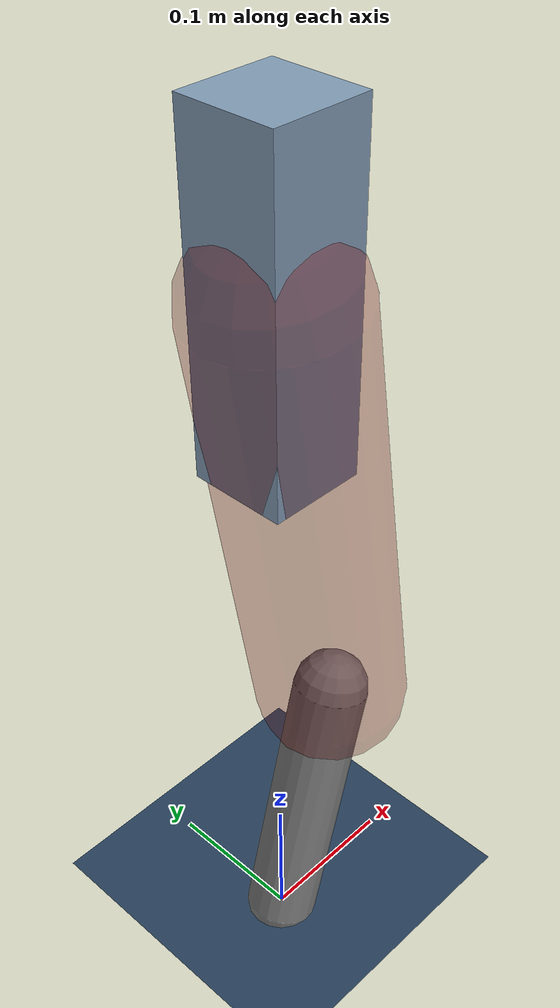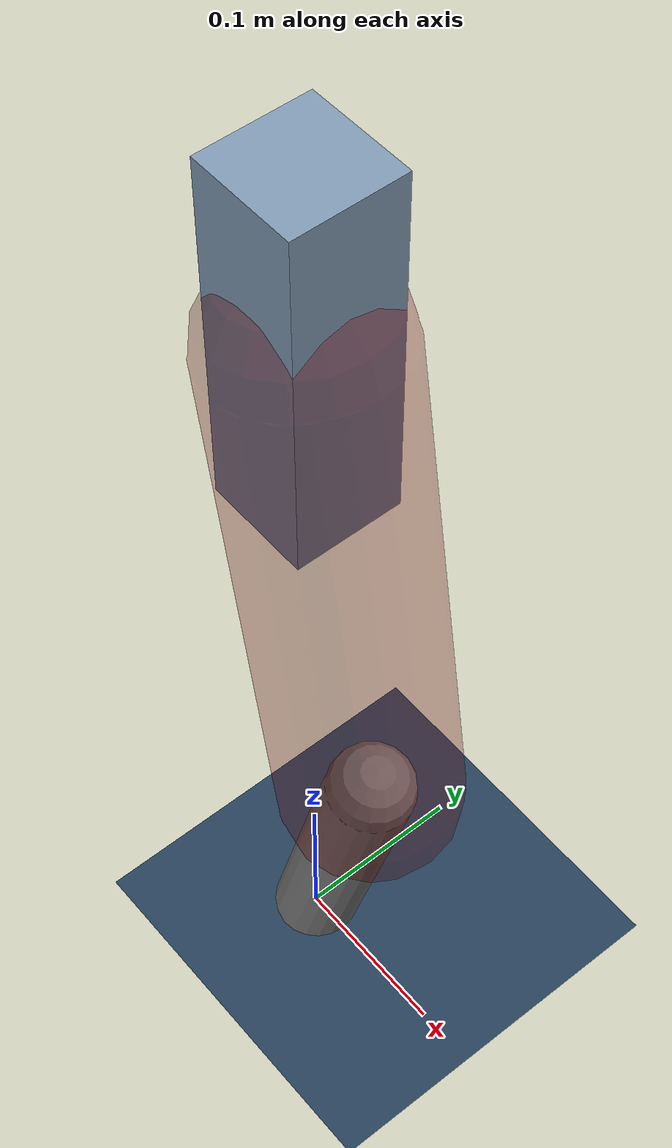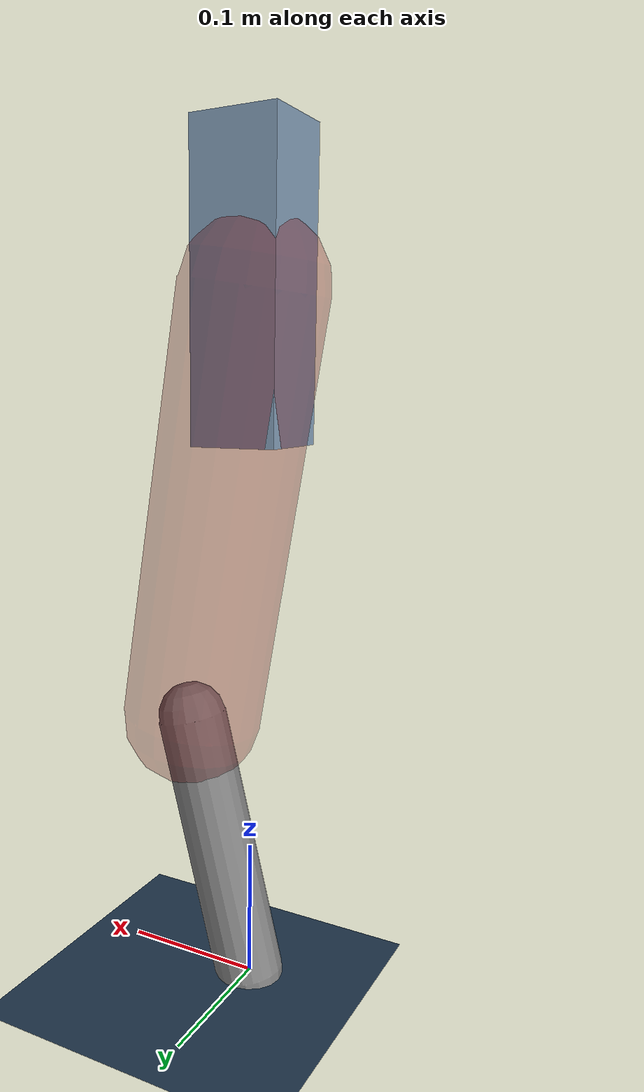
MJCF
<mujoco model="Hopper2D">
	<compiler inertiafromgeom="true" angle="radian" />
	<option timestep="0.001" integrator="implicit" cone="elliptic" solver="Newton" tolerance="1e-10" />

	<default>
		<geom contype="1" conaffinity="1" condim="3" friction="2 0.005 0.0001" solref="0.005 1" />
		<joint limited="true" damping="0.1" />
	</default>

	<asset>
		<texture name="skybox" type="skybox" builtin="gradient" rgb1=".4 .6 .8" rgb2="0 0 0" width="800" height="800" />
		<texture name="grid" type="2d" builtin="checker" rgb1=".1 .2 .3" rgb2=".2 .3 .4" width="300" height="300" mark="edge" markrgb=".2 .3 .4" />
		<material name="ground" texture="grid" texrepeat="1 1" texuniform="true" reflectance="0.1" />
		<material name="leg" rgba="0.5 0.6 0.7 1" />
	</asset>

	<worldbody>

		<geom name="floor" type="plane" size="5 5 0.25" material="ground" />

		<light directional="false" diffuse="0.8 0.8 0.8" specular="0.3 0.3 0.3" pos="0 0 2" dir="0 0 -1" />
		<light mode="targetbodycom" target="base" directional="false" diffuse="0.8 0.8 0.8" specular="0.3 0.3 0.3" pos="0 0 2" dir="0 0 -1" />

		<camera name="fixed" pos="0 -2 1" xyaxes="1 0 0 0 0 1" />
		<camera name="tracking" mode="trackcom" pos="0 -3 1" />

		<body name="root" pos="0 0 0.48787399470898446">
			<joint name="slide_x" type="slide" axis="1 0 0" range="-100 100" />
			<joint name="slide_z" type="slide" axis="0 0 1" range="0 10" />

			<body name="base" pos="0 0 0">
				<geom name="torso" type="box" size="0.03 0.03 0.1" mass="2.305" material="leg" />

				<body name="link1" pos="0 0 0" euler="0 1.4083976163192926 0">
					<joint type="hinge" axis="0 -1 0" pos="0 0 0" name="hinge1" limited="true" range="-3.14 3.14" stiffness="0" damping="0.1" />
					<geom name="thigh" type="capsule" fromto="0 0 0 0.30017953877482584 0 0" size="0.05" rgba="0.5 0 0 0.3" mass="0.9891847546920298" />

					<body name="link2" pos="0.30017953877482584 0 0" euler="0 0.410438252705965 0">
						<joint type="hinge" axis="0 -1 0" pos="0 0 0" name="hinge2" limited="true" range="-3.14 3.14" stiffness="0" damping="0.1" />
						<geom name="shank" type="capsule" fromto="0 0 0 0.19769445593415863 0 0" size="0.025" mass="0.3989555647473269" />

					</body>
				</body>
			</body>
		</body>
	</worldbody>

	<actuator>
		<motor name="torque1" joint="hinge1" ctrlrange="-65.4995316345543 65.4995316345543" ctrllimited="true" gear="1" />
		<motor name="torque2" joint="hinge2" ctrlrange="-85.50957264223835 85.50957264223835" ctrllimited="true" gear="1" />
	</actuator>
</mujoco>
